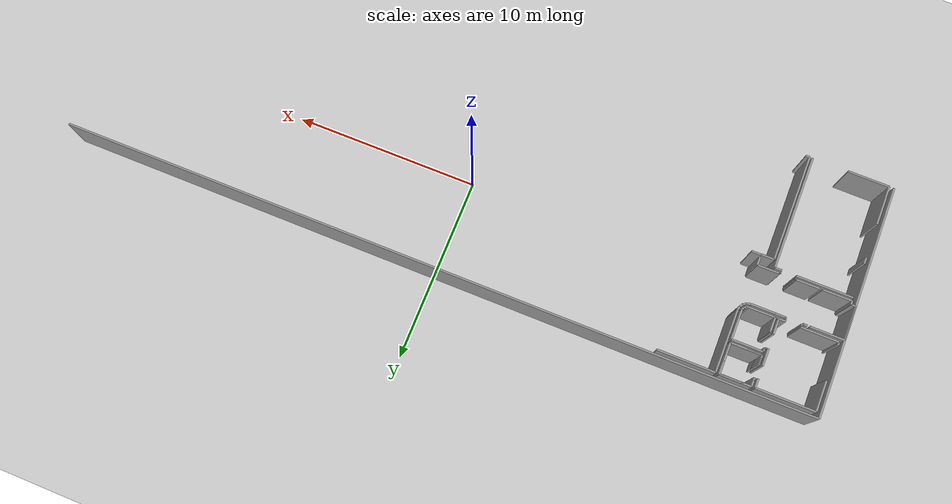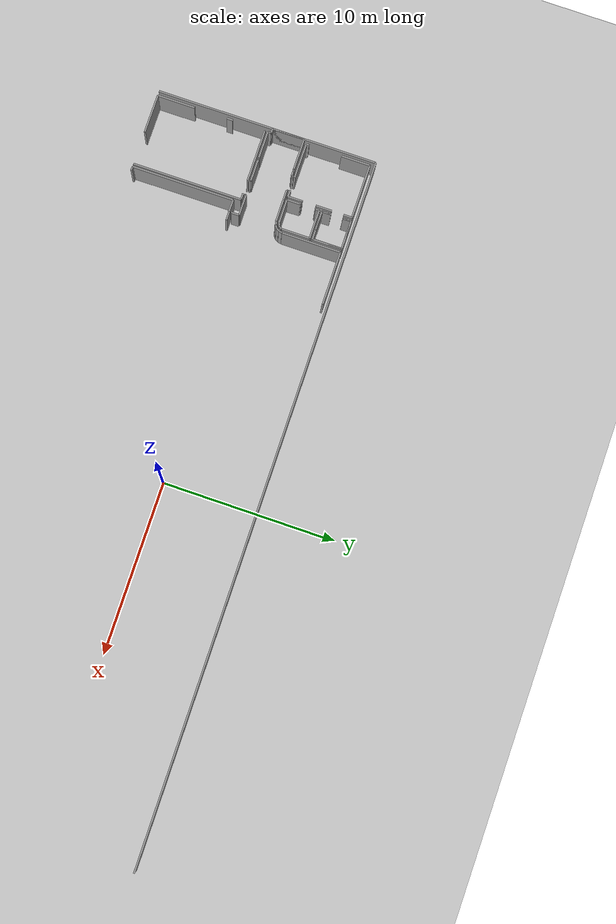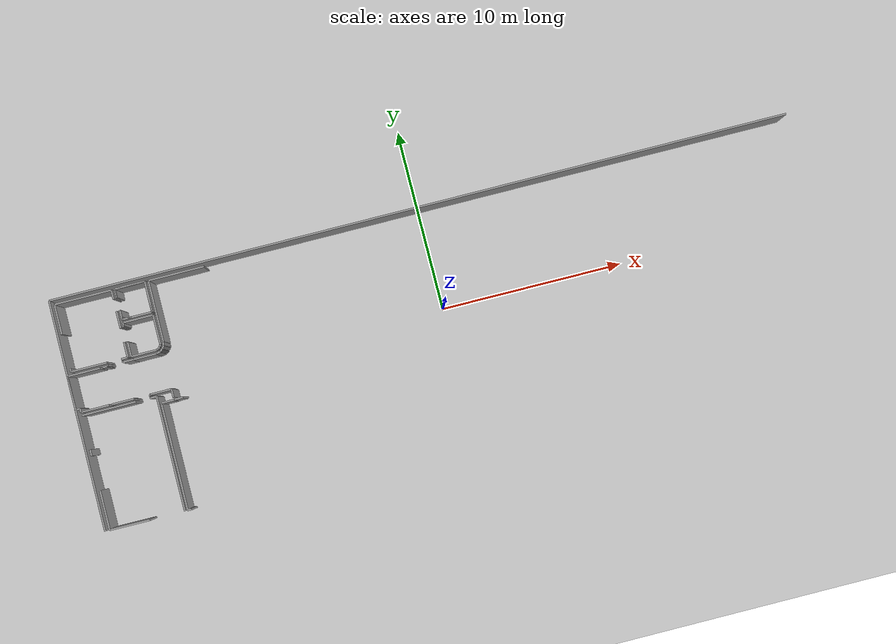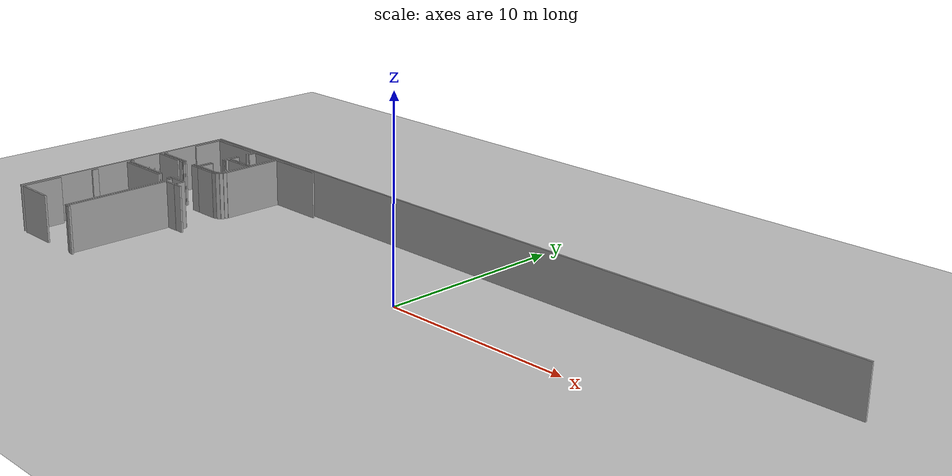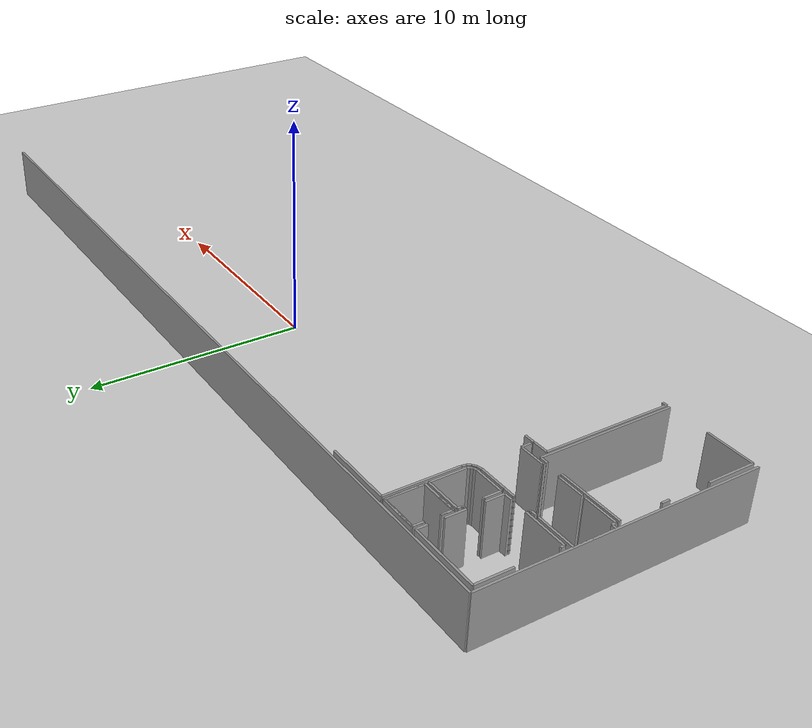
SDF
<sdf version="1.6">
 <world name="default">
  <model name="ground_plane">
   <static>1</static>
   <link name="link">
    <collision name="collision">
     <geometry><plane><normal>0 0 1</normal><size>100 100</size></plane></geometry>
     <surface><friction><ode><mu>100</mu><mu2>50</mu2></ode></friction></surface>
    </collision>
    <visual name="visual">
     <cast_shadows>0</cast_shadows>
     <geometry><plane><normal>0 0 1</normal><size>100 100</size></plane></geometry>
     <material>
      <script><uri>file://media/materials/scripts/gazebo.material</uri><name>Gazebo/Grey</name></script>
     </material>
    </visual>
   </link>
  </model>
  <model name="0510025537_Layout1_PLAN1">
   <static>1</static>
   <link name="Wall_0">
    <collision name="Wall_0_Collision">
     <geometry><box><size>1.64923428862 0.1 2.5</size></box></geometry>
     <pose>0.82461714431 0 1.25 0 0 0</pose>
    </collision>
    <visual name="Wall_0_Visual">
     <pose>0.82461714431 0 1.25 0 0 0</pose>
     <geometry><box><size>1.64923428862 0.1 2.5</size></box></geometry>
     <material>
      <script><uri>file://media/materials/scripts/gazebo.material</uri><name>Gazebo/Grey</name></script>
      <ambient>1 1 1 1</ambient>
     </material>
    </visual>
    <pose>3.54533900998 -0.258549914215 0 0 0 0.0</pose>
   </link>
   <link name="Wall_1">
    <collision name="Wall_1_Collision">
     <geometry><box><size>1.68164199021 0.1 2.5</size></box></geometry>
     <pose>0.840820995107 0 1.25 0 0 0</pose>
    </collision>
    <visual name="Wall_1_Visual">
     <pose>0.840820995107 0 1.25 0 0 0</pose>
     <geometry><box><size>1.68164199021 0.1 2.5</size></box></geometry>
     <material>
      <script><uri>file://media/materials/scripts/gazebo.material</uri><name>Gazebo/Grey</name></script>
      <ambient>1 1 1 1</ambient>
     </material>
    </visual>
    <pose>5.1945732986 -0.258549914215 0 0 0 -1.57079632679</pose>
   </link>
   <link name="Wall_2">
    <collision name="Wall_2_Collision">
     <geometry><box><size>1.65457202771 0.1 2.5</size></box></geometry>
     <pose>0.827286013853 0 1.25 0 0 0</pose>
    </collision>
    <visual name="Wall_2_Visual">
     <pose>0.827286013853 0 1.25 0 0 0</pose>
     <geometry><box><size>1.65457202771 0.1 2.5</size></box></geometry>
     <material>
      <script><uri>file://media/materials/scripts/gazebo.material</uri><name>Gazebo/Grey</name></script>
      <ambient>1 1 1 1</ambient>
     </material>
    </visual>
    <pose>5.1945732986 -1.94019190443 0 0 0 3.14159265359</pose>
   </link>
   <link name="Wall_3">
    <collision name="Wall_3_Collision">
     <geometry><box><size>0.517735273559 0.1 2.5</size></box></geometry>
     <pose>0.25886763678 0 1.25 0 0 0</pose>
    </collision>
    <visual name="Wall_3_Visual">
     <pose>0.25886763678 0 1.25 0 0 0</pose>
     <geometry><box><size>0.517735273559 0.1 2.5</size></box></geometry>
     <material>
      <script><uri>file://media/materials/scripts/gazebo.material</uri><name>Gazebo/Grey</name></script>
      <ambient>1 1 1 1</ambient>
     </material>
    </visual>
    <pose>3.54000127089 -1.94019190443 0 0 0 1.57079632679</pose>
   </link>
   <link name="Wall_4">
    <collision name="Wall_4_Collision">
     <geometry><box><size>0.475292094639 0.1 2.5</size></box></geometry>
     <pose>0.237646047319 0 1.25 0 0 0</pose>
    </collision>
    <visual name="Wall_4_Visual">
     <pose>0.237646047319 0 1.25 0 0 0</pose>
     <geometry><box><size>0.475292094639 0.1 2.5</size></box></geometry>
     <material>
      <script><uri>file://media/materials/scripts/gazebo.material</uri><name>Gazebo/Grey</name></script>
      <ambient>1 1 1 1</ambient>
     </material>
    </visual>
    <pose>3.54000127089 -0.733812035331 0 0 0 1.55956565127</pose>
   </link>
   <link name="Wall_5">
    <collision name="Wall_5_Collision">
     <geometry><box><size>0.523841901252 0.1 2.5</size></box></geometry>
     <pose>0.261920950626 0 1.25 0 0 0</pose>
    </collision>
    <visual name="Wall_5_Visual">
     <pose>0.261920950626 0 1.25 0 0 0</pose>
     <geometry><box><size>0.523841901252 0.1 2.5</size></box></geometry>
     <material>
      <script><uri>file://media/materials/scripts/gazebo.material</uri><name>Gazebo/Grey</name></script>
      <ambient>1 1 1 1</ambient>
     </material>
    </visual>
    <pose>3.54000127089 -1.94221261994 0 0 0 1.57079632679</pose>
   </link>
   <link name="Wall_6">
    <collision name="Wall_6_Collision">
     <geometry><box><size>0.4837834403 0.1 2.5</size></box></geometry>
     <pose>0.24189172015 0 1.25 0 0 0</pose>
    </collision>
    <visual name="Wall_6_Visual">
     <pose>0.24189172015 0 1.25 0 0 0</pose>
     <geometry><box><size>0.4837834403 0.1 2.5</size></box></geometry>
     <material>
      <script><uri>file://media/materials/scripts/gazebo.material</uri><name>Gazebo/Grey</name></script>
      <ambient>1 1 1 1</ambient>
     </material>
    </visual>
    <pose>3.54000127089 -0.739194255576 0 0 0 1.57079632679</pose>
   </link>
   <link name="Wall_7">
    <collision name="Wall_7_Collision">
     <geometry><box><size>1.66404016013 0.1 2.5</size></box></geometry>
     <pose>0.832020080066 0 1.25 0 0 0</pose>
    </collision>
    <visual name="Wall_7_Visual">
     <pose>0.832020080066 0 1.25 0 0 0</pose>
     <geometry><box><size>1.66404016013 0.1 2.5</size></box></geometry>
     <material>
      <script><uri>file://media/materials/scripts/gazebo.material</uri><name>Gazebo/Grey</name></script>
      <ambient>1 1 1 1</ambient>
     </material>
    </visual>
    <pose>3.54000127089 -0.255410815276 0 0 0 0.0</pose>
   </link>
   <link name="Wall_8">
    <collision name="Wall_8_Collision">
     <geometry><box><size>1.68915295164 0.1 2.5</size></box></geometry>
     <pose>0.844576475821 0 1.25 0 0 0</pose>
    </collision>
    <visual name="Wall_8_Visual">
     <pose>0.844576475821 0 1.25 0 0 0</pose>
     <geometry><box><size>1.68915295164 0.1 2.5</size></box></geometry>
     <material>
      <script><uri>file://media/materials/scripts/gazebo.material</uri><name>Gazebo/Grey</name></script>
      <ambient>1 1 1 1</ambient>
     </material>
    </visual>
    <pose>5.20404143102 -0.255410815276 0 0 0 -1.57079632679</pose>
   </link>
   <link name="Wall_9">
    <collision name="Wall_9_Collision">
     <geometry><box><size>1.66588295101 0.1 2.5</size></box></geometry>
     <pose>0.832941475504 0 1.25 0 0 0</pose>
    </collision>
    <visual name="Wall_9_Visual">
     <pose>0.832941475504 0 1.25 0 0 0</pose>
     <geometry><box><size>1.66588295101 0.1 2.5</size></box></geometry>
     <material>
      <script><uri>file://media/materials/scripts/gazebo.material</uri><name>Gazebo/Grey</name></script>
      <ambient>1 1 1 1</ambient>
     </material>
    </visual>
    <pose>5.20404143102 -1.94456376692 0 0 0 3.14159265359</pose>
   </link>
   <link name="Wall_10">
    <collision name="Wall_10_Collision">
     <geometry><box><size>0.528391688378 0.1 2.5</size></box></geometry>
     <pose>0.264195844189 0 1.25 0 0 0</pose>
    </collision>
    <visual name="Wall_10_Visual">
     <pose>0.264195844189 0 1.25 0 0 0</pose>
     <geometry><box><size>0.528391688378 0.1 2.5</size></box></geometry>
     <material>
      <script><uri>file://media/materials/scripts/gazebo.material</uri><name>Gazebo/Grey</name></script>
      <ambient>1 1 1 1</ambient>
     </material>
    </visual>
    <pose>3.53815848002 -1.94456376692 0 0 0 1.57079632679</pose>
   </link>
   <link name="Wall_11">
    <collision name="Wall_11_Collision">
     <geometry><box><size>0.476745950657 0.1 2.5</size></box></geometry>
     <pose>0.238372975328 0 1.25 0 0 0</pose>
    </collision>
    <visual name="Wall_11_Visual">
     <pose>0.238372975328 0 1.25 0 0 0</pose>
     <geometry><box><size>0.476745950657 0.1 2.5</size></box></geometry>
     <material>
      <script><uri>file://media/materials/scripts/gazebo.material</uri><name>Gazebo/Grey</name></script>
      <ambient>1 1 1 1</ambient>
     </material>
    </visual>
    <pose>3.53815848002 -0.735241786872 0 0 0 1.5557342136</pose>
   </link>
   <link name="Wall_12">
    <collision name="Wall_12_Collision">
     <geometry><box><size>0.788523860965 0.1 2.5</size></box></geometry>
     <pose>0.394261930482 0 1.25 0 0 0</pose>
    </collision>
    <visual name="Wall_12_Visual">
     <pose>0.394261930482 0 1.25 0 0 0</pose>
     <geometry><box><size>0.788523860965 0.1 2.5</size></box></geometry>
     <material>
      <script><uri>file://media/materials/scripts/gazebo.material</uri><name>Gazebo/Grey</name></script>
      <ambient>1 1 1 1</ambient>
     </material>
    </visual>
    <pose>3.54178051725 -3.9739340408 0 0 0 1.57079632679</pose>
   </link>
   <link name="Wall_13">
    <collision name="Wall_13_Collision">
     <geometry><box><size>0.0599224756942 0.1 2.5</size></box></geometry>
     <pose>0.0299612378471 0 1.25 0 0 0</pose>
    </collision>
    <visual name="Wall_13_Visual">
     <pose>0.0299612378471 0 1.25 0 0 0</pose>
     <geometry><box><size>0.0599224756942 0.1 2.5</size></box></geometry>
     <material>
      <script><uri>file://media/materials/scripts/gazebo.material</uri><name>Gazebo/Grey</name></script>
      <ambient>1 1 1 1</ambient>
     </material>
    </visual>
    <pose>3.54178051725 -3.18541017983 0 0 0 3.14159265359</pose>
   </link>
   <link name="Wall_14">
    <collision name="Wall_14_Collision">
     <geometry><box><size>0.0581432293321 0.1 2.5</size></box></geometry>
     <pose>0.0290716146661 0 1.25 0 0 0</pose>
    </collision>
    <visual name="Wall_14_Visual">
     <pose>0.0290716146661 0 1.25 0 0 0</pose>
     <geometry><box><size>0.0581432293321 0.1 2.5</size></box></geometry>
     <material>
      <script><uri>file://media/materials/scripts/gazebo.material</uri><name>Gazebo/Grey</name></script>
      <ambient>1 1 1 1</ambient>
     </material>
    </visual>
    <pose>3.48185804156 -3.18541017983 0 0 0 1.57079632679</pose>
   </link>
   <link name="Wall_15">
    <collision name="Wall_15_Collision">
     <geometry><box><size>0.0581114570757 0.1 2.5</size></box></geometry>
     <pose>0.0290557285378 0 1.25 0 0 0</pose>
    </collision>
    <visual name="Wall_15_Visual">
     <pose>0.0290557285378 0 1.25 0 0 0</pose>
     <geometry><box><size>0.0581114570757 0.1 2.5</size></box></geometry>
     <material>
      <script><uri>file://media/materials/scripts/gazebo.material</uri><name>Gazebo/Grey</name></script>
      <ambient>1 1 1 1</ambient>
     </material>
    </visual>
    <pose>3.48185804156 -2.36017665375 0 0 0 1.57079632679</pose>
   </link>
   <link name="Wall_16">
    <collision name="Wall_16_Collision">
     <geometry><box><size>0.0618923555951 0.1 2.5</size></box></geometry>
     <pose>0.0309461777975 0 1.25 0 0 0</pose>
    </collision>
    <visual name="Wall_16_Visual">
     <pose>0.0309461777975 0 1.25 0 0 0</pose>
     <geometry><box><size>0.0618923555951 0.1 2.5</size></box></geometry>
     <material>
      <script><uri>file://media/materials/scripts/gazebo.material</uri><name>Gazebo/Grey</name></script>
      <ambient>1 1 1 1</ambient>
     </material>
    </visual>
    <pose>3.48185804156 -2.30206519667 0 0 0 0.0</pose>
   </link>
   <link name="Wall_17">
    <collision name="Wall_17_Collision">
     <geometry><box><size>0.193200737116 0.1 2.5</size></box></geometry>
     <pose>0.0966003685582 0 1.25 0 0 0</pose>
    </collision>
    <visual name="Wall_17_Visual">
     <pose>0.0966003685582 0 1.25 0 0 0</pose>
     <geometry><box><size>0.193200737116 0.1 2.5</size></box></geometry>
     <material>
      <script><uri>file://media/materials/scripts/gazebo.material</uri><name>Gazebo/Grey</name></script>
      <ambient>1 1 1 1</ambient>
     </material>
    </visual>
    <pose>3.54375039715 -2.30206519667 0 0 0 1.57079632679</pose>
   </link>
   <link name="Wall_18">
    <collision name="Wall_18_Collision">
     <geometry><box><size>1.65984622228 0.1 2.5</size></box></geometry>
     <pose>0.829923111139 0 1.25 0 0 0</pose>
    </collision>
    <visual name="Wall_18_Visual">
     <pose>0.829923111139 0 1.25 0 0 0</pose>
     <geometry><box><size>1.65984622228 0.1 2.5</size></box></geometry>
     <material>
      <script><uri>file://media/materials/scripts/gazebo.material</uri><name>Gazebo/Grey</name></script>
      <ambient>1 1 1 1</ambient>
     </material>
    </visual>
    <pose>3.54375039715 -2.10886445955 0 0 0 0.0</pose>
   </link>
   <link name="Wall_19">
    <collision name="Wall_19_Collision">
     <geometry><box><size>1.62398169918 0.1 2.5</size></box></geometry>
     <pose>0.81199084959 0 1.25 0 0 0</pose>
    </collision>
    <visual name="Wall_19_Visual">
     <pose>0.81199084959 0 1.25 0 0 0</pose>
     <geometry><box><size>1.62398169918 0.1 2.5</size></box></geometry>
     <material>
      <script><uri>file://media/materials/scripts/gazebo.material</uri><name>Gazebo/Grey</name></script>
      <ambient>1 1 1 1</ambient>
     </material>
    </visual>
    <pose>5.20359661943 -2.10886445955 0 0 0 -1.57079632679</pose>
   </link>
   <link name="Wall_20">
    <collision name="Wall_20_Collision">
     <geometry><box><size>0.123572431417 0.1 2.5</size></box></geometry>
     <pose>0.0617862157083 0 1.25 0 0 0</pose>
    </collision>
    <visual name="Wall_20_Visual">
     <pose>0.0617862157083 0 1.25 0 0 0</pose>
     <geometry><box><size>0.123572431417 0.1 2.5</size></box></geometry>
     <material>
      <script><uri>file://media/materials/scripts/gazebo.material</uri><name>Gazebo/Grey</name></script>
      <ambient>1 1 1 1</ambient>
     </material>
    </visual>
    <pose>5.20359661943 -3.73284615873 0 0 0 -2.09657584292</pose>
   </link>
   <link name="Wall_21">
    <collision name="Wall_21_Collision">
     <geometry><box><size>0.124756927835 0.1 2.5</size></box></geometry>
     <pose>0.0623784639175 0 1.25 0 0 0</pose>
    </collision>
    <visual name="Wall_21_Visual">
     <pose>0.0623784639175 0 1.25 0 0 0</pose>
     <geometry><box><size>0.124756927835 0.1 2.5</size></box></geometry>
     <material>
      <script><uri>file://media/materials/scripts/gazebo.material</uri><name>Gazebo/Grey</name></script>
      <ambient>1 1 1 1</ambient>
     </material>
    </visual>
    <pose>5.14157717481 -3.83972802948 0 0 0 -2.37564448673</pose>
   </link>
   <link name="Wall_22">
    <collision name="Wall_22_Collision">
     <geometry><box><size>0.126291773989 0.1 2.5</size></box></geometry>
     <pose>0.0631458869943 0 1.25 0 0 0</pose>
    </collision>
    <visual name="Wall_22_Visual">
     <pose>0.0631458869943 0 1.25 0 0 0</pose>
     <geometry><box><size>0.126291773989 0.1 2.5</size></box></geometry>
     <material>
      <script><uri>file://media/materials/scripts/gazebo.material</uri><name>Gazebo/Grey</name></script>
      <ambient>1 1 1 1</ambient>
     </material>
    </visual>
    <pose>5.05166168901 -3.92621211158 0 0 0 -2.77304608745</pose>
   </link>
   <link name="Wall_23">
    <collision name="Wall_23_Collision">
     <geometry><box><size>1.39207142143 0.1 2.5</size></box></geometry>
     <pose>0.696035710716 0 1.25 0 0 0</pose>
    </collision>
    <visual name="Wall_23_Visual">
     <pose>0.696035710716 0 1.25 0 0 0</pose>
     <geometry><box><size>1.39207142143 0.1 2.5</size></box></geometry>
     <material>
      <script><uri>file://media/materials/scripts/gazebo.material</uri><name>Gazebo/Grey</name></script>
      <ambient>1 1 1 1</ambient>
     </material>
    </visual>
    <pose>4.93385016204 -3.97170998284 0 0 0 -3.1399949921</pose>
   </link>
   <link name="Wall_24">
    <collision name="Wall_24_Collision">
     <geometry><box><size>0.175255766665 0.1 2.5</size></box></geometry>
     <pose>0.0876278833323 0 1.25 0 0 0</pose>
    </collision>
    <visual name="Wall_24_Visual">
     <pose>0.0876278833323 0 1.25 0 0 0</pose>
     <geometry><box><size>0.175255766665 0.1 2.5</size></box></geometry>
     <material>
      <script><uri>file://media/materials/scripts/gazebo.material</uri><name>Gazebo/Grey</name></script>
      <ambient>1 1 1 1</ambient>
     </material>
    </visual>
    <pose>0.234415708204 -3.96713477791 0 0 0 1.57079632679</pose>
   </link>
   <link name="Wall_25">
    <collision name="Wall_25_Collision">
     <geometry><box><size>1.64880218593 0.1 2.5</size></box></geometry>
     <pose>0.824401092966 0 1.25 0 0 0</pose>
    </collision>
    <visual name="Wall_25_Visual">
     <pose>0.824401092966 0 1.25 0 0 0</pose>
     <geometry><box><size>1.64880218593 0.1 2.5</size></box></geometry>
     <material>
      <script><uri>file://media/materials/scripts/gazebo.material</uri><name>Gazebo/Grey</name></script>
      <ambient>1 1 1 1</ambient>
     </material>
    </visual>
    <pose>0.234415708204 -1.91654063672 0 0 0 1.57079632679</pose>
   </link>
   <link name="Wall_26">
    <collision name="Wall_26_Collision">
     <geometry><box><size>3.12130647519 0.1 2.5</size></box></geometry>
     <pose>1.56065323759 0 1.25 0 0 0</pose>
    </collision>
    <visual name="Wall_26_Visual">
     <pose>1.56065323759 0 1.25 0 0 0</pose>
     <geometry><box><size>3.12130647519 0.1 2.5</size></box></geometry>
     <material>
      <script><uri>file://media/materials/scripts/gazebo.material</uri><name>Gazebo/Grey</name></script>
      <ambient>1 1 1 1</ambient>
     </material>
    </visual>
    <pose>0.234415708204 -0.267738450785 0 0 0 0.0</pose>
   </link>
   <link name="Wall_27">
    <collision name="Wall_27_Collision">
     <geometry><box><size>0.48933723073 0.1 2.5</size></box></geometry>
     <pose>0.244668615365 0 1.25 0 0 0</pose>
    </collision>
    <visual name="Wall_27_Visual">
     <pose>0.244668615365 0 1.25 0 0 0</pose>
     <geometry><box><size>0.48933723073 0.1 2.5</size></box></geometry>
     <material>
      <script><uri>file://media/materials/scripts/gazebo.material</uri><name>Gazebo/Grey</name></script>
      <ambient>1 1 1 1</ambient>
     </material>
    </visual>
    <pose>3.35572218339 -0.267738450785 0 0 0 -1.57079632679</pose>
   </link>
   <link name="Wall_28">
    <collision name="Wall_28_Collision">
     <geometry><box><size>0.924286712842 0.1 2.5</size></box></geometry>
     <pose>0.462143356421 0 1.25 0 0 0</pose>
    </collision>
    <visual name="Wall_28_Visual">
     <pose>0.462143356421 0 1.25 0 0 0</pose>
     <geometry><box><size>0.924286712842 0.1 2.5</size></box></geometry>
     <material>
      <script><uri>file://media/materials/scripts/gazebo.material</uri><name>Gazebo/Grey</name></script>
      <ambient>1 1 1 1</ambient>
     </material>
    </visual>
    <pose>3.35572218339 -1.4363474614 0 0 0 -1.57079632679</pose>
   </link>
   <link name="Wall_29">
    <collision name="Wall_29_Collision">
     <geometry><box><size>0.844252398805 0.1 2.5</size></box></geometry>
     <pose>0.422126199403 0 1.25 0 0 0</pose>
    </collision>
    <visual name="Wall_29_Visual">
     <pose>0.422126199403 0 1.25 0 0 0</pose>
     <geometry><box><size>0.844252398805 0.1 2.5</size></box></geometry>
     <material>
      <script><uri>file://media/materials/scripts/gazebo.material</uri><name>Gazebo/Grey</name></script>
      <ambient>1 1 1 1</ambient>
     </material>
    </visual>
    <pose>3.35572218339 -3.13222342251 0 0 0 -1.57079632679</pose>
   </link>
   <link name="Wall_30">
    <collision name="Wall_30_Collision">
     <geometry><box><size>0.364872593252 0.1 2.5</size></box></geometry>
     <pose>0.182436296626 0 1.25 0 0 0</pose>
    </collision>
    <visual name="Wall_30_Visual">
     <pose>0.182436296626 0 1.25 0 0 0</pose>
     <geometry><box><size>0.364872593252 0.1 2.5</size></box></geometry>
     <material>
      <script><uri>file://media/materials/scripts/gazebo.material</uri><name>Gazebo/Grey</name></script>
      <ambient>1 1 1 1</ambient>
     </material>
    </visual>
    <pose>3.35572218339 -3.97647582131 0 0 0 3.14159265359</pose>
   </link>
   <link name="Wall_31">
    <collision name="Wall_31_Collision">
     <geometry><box><size>1.98655052484 0.1 2.5</size></box></geometry>
     <pose>0.993275262419 0 1.25 0 0 0</pose>
    </collision>
    <visual name="Wall_31_Visual">
     <pose>0.993275262419 0 1.25 0 0 0</pose>
     <geometry><box><size>1.98655052484 0.1 2.5</size></box></geometry>
     <material>
      <script><uri>file://media/materials/scripts/gazebo.material</uri><name>Gazebo/Grey</name></script>
      <ambient>1 1 1 1</ambient>
     </material>
    </visual>
    <pose>2.22094427146 -3.97647582131 0 0 0 3.13689049389</pose>
   </link>
   <link name="Wall_32">
    <collision name="Wall_32_Collision">
     <geometry><box><size>1.83713541336 0.1 2.5</size></box></geometry>
     <pose>0.918567706679 0 1.25 0 0 0</pose>
    </collision>
    <visual name="Wall_32_Visual">
     <pose>0.918567706679 0 1.25 0 0 0</pose>
     <geometry><box><size>1.83713541336 0.1 2.5</size></box></geometry>
     <material>
      <script><uri>file://media/materials/scripts/gazebo.material</uri><name>Gazebo/Grey</name></script>
      <ambient>1 1 1 1</ambient>
     </material>
    </visual>
    <pose>0.0 -6.00157590392 0 0 0 1.57079632679</pose>
   </link>
   <link name="Wall_33">
    <collision name="Wall_33_Collision">
     <geometry><box><size>1.78928639512 0.1 2.5</size></box></geometry>
     <pose>0.89464319756 0 1.25 0 0 0</pose>
    </collision>
    <visual name="Wall_33_Visual">
     <pose>0.89464319756 0 1.25 0 0 0</pose>
     <geometry><box><size>1.78928639512 0.1 2.5</size></box></geometry>
     <material>
      <script><uri>file://media/materials/scripts/gazebo.material</uri><name>Gazebo/Grey</name></script>
      <ambient>1 1 1 1</ambient>
     </material>
    </visual>
    <pose>0.0 -4.16444049056 0 0 0 0.0</pose>
   </link>
   <link name="Wall_34">
    <collision name="Wall_34_Collision">
     <geometry><box><size>1.54616508864 0.1 2.5</size></box></geometry>
     <pose>0.773082544322 0 1.25 0 0 0</pose>
    </collision>
    <visual name="Wall_34_Visual">
     <pose>0.773082544322 0 1.25 0 0 0</pose>
     <geometry><box><size>1.54616508864 0.1 2.5</size></box></geometry>
     <material>
      <script><uri>file://media/materials/scripts/gazebo.material</uri><name>Gazebo/Grey</name></script>
      <ambient>1 1 1 1</ambient>
     </material>
    </visual>
    <pose>1.78928639512 -6.19818262693 0 0 0 3.14159265359</pose>
   </link>
   <link name="Wall_35">
    <collision name="Wall_35_Collision">
     <geometry><box><size>0.193556586389 0.1 2.5</size></box></geometry>
     <pose>0.0967782931944 0 1.25 0 0 0</pose>
    </collision>
    <visual name="Wall_35_Visual">
     <pose>0.0967782931944 0 1.25 0 0 0</pose>
     <geometry><box><size>0.193556586389 0.1 2.5</size></box></geometry>
     <material>
      <script><uri>file://media/materials/scripts/gazebo.material</uri><name>Gazebo/Grey</name></script>
      <ambient>1 1 1 1</ambient>
     </material>
    </visual>
    <pose>0.243121306475 -6.19818262693 0 0 0 1.57079632679</pose>
   </link>
   <link name="Wall_36">
    <collision name="Wall_36_Collision">
     <geometry><box><size>0.243140438832 0.1 2.5</size></box></geometry>
     <pose>0.121570219416 0 1.25 0 0 0</pose>
    </collision>
    <visual name="Wall_36_Visual">
     <pose>0.121570219416 0 1.25 0 0 0</pose>
     <geometry><box><size>0.243140438832 0.1 2.5</size></box></geometry>
     <material>
      <script><uri>file://media/materials/scripts/gazebo.material</uri><name>Gazebo/Grey</name></script>
      <ambient>1 1 1 1</ambient>
     </material>
    </visual>
    <pose>0.243121306475 -6.00462604054 0 0 0 3.12904757207</pose>
   </link>
   <link name="Wall_37">
    <collision name="Wall_37_Collision">
     <geometry><box><size>2.1547944335 0.1 2.5</size></box></geometry>
     <pose>1.07739721675 0 1.25 0 0 0</pose>
    </collision>
    <visual name="Wall_37_Visual">
     <pose>1.07739721675 0 1.25 0 0 0</pose>
     <geometry><box><size>2.1547944335 0.1 2.5</size></box></geometry>
     <material>
      <script><uri>file://media/materials/scripts/gazebo.material</uri><name>Gazebo/Grey</name></script>
      <ambient>1 1 1 1</ambient>
     </material>
    </visual>
    <pose>0.248395501048 -12.6232954184 0 0 0 1.57079632679</pose>
   </link>
   <link name="Wall_38">
    <collision name="Wall_38_Collision">
     <geometry><box><size>0.353879392514 0.1 2.5</size></box></geometry>
     <pose>0.176939696257 0 1.25 0 0 0</pose>
    </collision>
    <visual name="Wall_38_Visual">
     <pose>0.176939696257 0 1.25 0 0 0</pose>
     <geometry><box><size>0.353879392514 0.1 2.5</size></box></geometry>
     <material>
      <script><uri>file://media/materials/scripts/gazebo.material</uri><name>Gazebo/Grey</name></script>
      <ambient>1 1 1 1</ambient>
     </material>
    </visual>
    <pose>0.248395501048 -8.59171379551 0 0 0 1.57079632679</pose>
   </link>
   <link name="Wall_39">
    <collision name="Wall_39_Collision">
     <geometry><box><size>2.97032471246 0.1 2.5</size></box></geometry>
     <pose>1.48516235623 0 1.25 0 0 0</pose>
    </collision>
    <visual name="Wall_39_Visual">
     <pose>1.48516235623 0 1.25 0 0 0</pose>
     <geometry><box><size>2.97032471246 0.1 2.5</size></box></geometry>
     <material>
      <script><uri>file://media/materials/scripts/gazebo.material</uri><name>Gazebo/Grey</name></script>
      <ambient>1 1 1 1</ambient>
     </material>
    </visual>
    <pose>0.248395501048 -6.37388320519 0 0 0 0.0</pose>
   </link>
   <link name="Wall_40">
    <collision name="Wall_40_Collision">
     <geometry><box><size>0.368176907924 0.1 2.5</size></box></geometry>
     <pose>0.184088453962 0 1.25 0 0 0</pose>
    </collision>
    <visual name="Wall_40_Visual">
     <pose>0.184088453962 0 1.25 0 0 0</pose>
     <geometry><box><size>0.368176907924 0.1 2.5</size></box></geometry>
     <material>
      <script><uri>file://media/materials/scripts/gazebo.material</uri><name>Gazebo/Grey</name></script>
      <ambient>1 1 1 1</ambient>
     </material>
    </visual>
    <pose>3.98481286141 -6.37388320519 0 0 0 0.0</pose>
   </link>
   <link name="Wall_41">
    <collision name="Wall_41_Collision">
     <geometry><box><size>6.26129503717 0.1 2.5</size></box></geometry>
     <pose>3.13064751859 0 1.25 0 0 0</pose>
    </collision>
    <visual name="Wall_41_Visual">
     <pose>3.13064751859 0 1.25 0 0 0</pose>
     <geometry><box><size>6.26129503717 0.1 2.5</size></box></geometry>
     <material>
      <script><uri>file://media/materials/scripts/gazebo.material</uri><name>Gazebo/Grey</name></script>
      <ambient>1 1 1 1</ambient>
     </material>
    </visual>
    <pose>4.35298976933 -6.37388320519 0 0 0 -1.57079632679</pose>
   </link>
   <link name="Wall_42">
    <collision name="Wall_42_Collision">
     <geometry><box><size>2.19898997621 0.1 2.5</size></box></geometry>
     <pose>1.09949498811 0 1.25 0 0 0</pose>
    </collision>
    <visual name="Wall_42_Visual">
     <pose>1.09949498811 0 1.25 0 0 0</pose>
     <geometry><box><size>2.19898997621 0.1 2.5</size></box></geometry>
     <material>
      <script><uri>file://media/materials/scripts/gazebo.material</uri><name>Gazebo/Grey</name></script>
      <ambient>1 1 1 1</ambient>
     </material>
    </visual>
    <pose>2.44735337104 -12.6351782424 0 0 0 3.13618886281</pose>
   </link>
   <link name="Wall_43">
    <collision name="Wall_43_Collision">
     <geometry><box><size>5.84736607994 0.1 2.5</size></box></geometry>
     <pose>2.92368303997 0 1.25 0 0 0</pose>
    </collision>
    <visual name="Wall_43_Visual">
     <pose>2.92368303997 0 1.25 0 0 0</pose>
     <geometry><box><size>5.84736607994 0.1 2.5</size></box></geometry>
     <material>
      <script><uri>file://media/materials/scripts/gazebo.material</uri><name>Gazebo/Grey</name></script>
      <ambient>1 1 1 1</ambient>
     </material>
    </visual>
    <pose>4.50854673699 -12.6251382093 0 0 0 1.57079632679</pose>
   </link>
   <link name="Wall_44">
    <collision name="Wall_44_Collision">
     <geometry><box><size>0.694859248904 0.1 2.5</size></box></geometry>
     <pose>0.347429624452 0 1.25 0 0 0</pose>
    </collision>
    <visual name="Wall_44_Visual">
     <pose>0.347429624452 0 1.25 0 0 0</pose>
     <geometry><box><size>0.694859248904 0.1 2.5</size></box></geometry>
     <material>
      <script><uri>file://media/materials/scripts/gazebo.material</uri><name>Gazebo/Grey</name></script>
      <ambient>1 1 1 1</ambient>
     </material>
    </visual>
    <pose>4.50854673699 -6.77777212938 0 0 0 0.0</pose>
   </link>
   <link name="Wall_45">
    <collision name="Wall_45_Collision">
     <geometry><box><size>0.0155684056682 0.1 2.5</size></box></geometry>
     <pose>0.00778420283409 0 1.25 0 0 0</pose>
    </collision>
    <visual name="Wall_45_Visual">
     <pose>0.00778420283409 0 1.25 0 0 0</pose>
     <geometry><box><size>0.0155684056682 0.1 2.5</size></box></geometry>
     <material>
      <script><uri>file://media/materials/scripts/gazebo.material</uri><name>Gazebo/Grey</name></script>
      <ambient>1 1 1 1</ambient>
     </material>
    </visual>
    <pose>5.20340598589 -6.77777212938 0 0 0 1.57079632679</pose>
   </link>
   <link name="Wall_46">
    <collision name="Wall_46_Collision">
     <geometry><box><size>0.495710745377 0.1 2.5</size></box></geometry>
     <pose>0.247855372689 0 1.25 0 0 0</pose>
    </collision>
    <visual name="Wall_46_Visual">
     <pose>0.247855372689 0 1.25 0 0 0</pose>
     <geometry><box><size>0.495710745377 0.1 2.5</size></box></geometry>
     <material>
      <script><uri>file://media/materials/scripts/gazebo.material</uri><name>Gazebo/Grey</name></script>
      <ambient>1 1 1 1</ambient>
     </material>
    </visual>
    <pose>5.20340598589 -6.76220372371 0 0 0 0.0</pose>
   </link>
   <link name="Wall_57">
    <collision name="Wall_57_Collision">
     <geometry><box><size>0.213527812805 0.1 2.5</size></box></geometry>
     <pose>0.106763906402 0 1.25 0 0 0</pose>
    </collision>
    <visual name="Wall_57_Visual">
     <pose>0.106763906402 0 1.25 0 0 0</pose>
     <geometry><box><size>0.213527812805 0.1 2.5</size></box></geometry>
     <material>
      <script><uri>file://media/materials/scripts/gazebo.material</uri><name>Gazebo/Grey</name></script>
      <ambient>1 1 1 1</ambient>
     </material>
    </visual>
    <pose>4.72199275593 -12.631047849 0 0 0 3.11391291332</pose>
   </link>
   <link name="Wall_63">
    <collision name="Wall_63_Collision">
     <geometry><box><size>1.26726822139 0.1 2.5</size></box></geometry>
     <pose>0.633634110695 0 1.25 0 0 0</pose>
    </collision>
    <visual name="Wall_63_Visual">
     <pose>0.633634110695 0 1.25 0 0 0</pose>
     <geometry><box><size>1.26726822139 0.1 2.5</size></box></geometry>
     <material>
      <script><uri>file://media/materials/scripts/gazebo.material</uri><name>Gazebo/Grey</name></script>
      <ambient>1 1 1 1</ambient>
     </material>
    </visual>
    <pose>3.61256910466 -4.15827667281 0 0 0 0.0</pose>
   </link>
   <link name="Wall_64">
    <collision name="Wall_64_Collision">
     <geometry><box><size>0.222871189466 0.1 2.5</size></box></geometry>
     <pose>0.111435594733 0 1.25 0 0 0</pose>
    </collision>
    <visual name="Wall_64_Visual">
     <pose>0.111435594733 0 1.25 0 0 0</pose>
     <geometry><box><size>0.222871189466 0.1 2.5</size></box></geometry>
     <material>
      <script><uri>file://media/materials/scripts/gazebo.material</uri><name>Gazebo/Grey</name></script>
      <ambient>1 1 1 1</ambient>
     </material>
    </visual>
    <pose>4.87983732605 -4.15827667281 0 0 0 0.24802132022</pose>
   </link>
   <link name="Wall_65">
    <collision name="Wall_65_Collision">
     <geometry><box><size>0.201920786478 0.1 2.5</size></box></geometry>
     <pose>0.100960393239 0 1.25 0 0 0</pose>
    </collision>
    <visual name="Wall_65_Visual">
     <pose>0.100960393239 0 1.25 0 0 0</pose>
     <geometry><box><size>0.201920786478 0.1 2.5</size></box></geometry>
     <material>
      <script><uri>file://media/materials/scripts/gazebo.material</uri><name>Gazebo/Grey</name></script>
      <ambient>1 1 1 1</ambient>
     </material>
    </visual>
    <pose>5.09588867001 -4.10356484718 0 0 0 0.639347054138</pose>
   </link>
   <link name="Wall_66">
    <collision name="Wall_66_Collision">
     <geometry><box><size>0.185253017718 0.1 2.5</size></box></geometry>
     <pose>0.0926265088592 0 1.25 0 0 0</pose>
    </collision>
    <visual name="Wall_66_Visual">
     <pose>0.0926265088592 0 1.25 0 0 0</pose>
     <geometry><box><size>0.185253017718 0.1 2.5</size></box></geometry>
     <material>
      <script><uri>file://media/materials/scripts/gazebo.material</uri><name>Gazebo/Grey</name></script>
      <ambient>1 1 1 1</ambient>
     </material>
    </visual>
    <pose>5.25792717799 -3.98308445066 0 0 0 1.04190708385</pose>
   </link>
   <link name="Wall_67">
    <collision name="Wall_67_Collision">
     <geometry><box><size>0.19106731906 0.1 2.5</size></box></geometry>
     <pose>0.0955336595299 0 1.25 0 0 0</pose>
    </collision>
    <visual name="Wall_67_Visual">
     <pose>0.0955336595299 0 1.25 0 0 0</pose>
     <geometry><box><size>0.19106731906 0.1 2.5</size></box></geometry>
     <material>
      <script><uri>file://media/materials/scripts/gazebo.material</uri><name>Gazebo/Grey</name></script>
      <ambient>1 1 1 1</ambient>
     </material>
    </visual>
    <pose>5.35140115651 -3.82314291161 0 0 0 1.36276911483</pose>
   </link>
   <link name="Wall_68">
    <collision name="Wall_68_Collision">
     <geometry><box><size>3.37777212938 0.1 2.5</size></box></geometry>
     <pose>1.68888606469 0 1.25 0 0 0</pose>
    </collision>
    <visual name="Wall_68_Visual">
     <pose>1.68888606469 0 1.25 0 0 0</pose>
     <geometry><box><size>3.37777212938 0.1 2.5</size></box></geometry>
     <material>
      <script><uri>file://media/materials/scripts/gazebo.material</uri><name>Gazebo/Grey</name></script>
      <ambient>1 1 1 1</ambient>
     </material>
    </visual>
    <pose>5.39086229904 -3.63619495457 0 0 0 1.57079632679</pose>
   </link>
   <link name="Wall_69">
    <collision name="Wall_69_Collision">
     <geometry><box><size>3.06398932452 0.1 2.5</size></box></geometry>
     <pose>1.53199466226 0 1.25 0 0 0</pose>
    </collision>
    <visual name="Wall_69_Visual">
     <pose>1.53199466226 0 1.25 0 0 0</pose>
     <geometry><box><size>3.06398932452 0.1 2.5</size></box></geometry>
     <material>
      <script><uri>file://media/materials/scripts/gazebo.material</uri><name>Gazebo/Grey</name></script>
      <ambient>1 1 1 1</ambient>
     </material>
    </visual>
    <pose>5.39086229904 -0.258422825189 0 0 0 0.0</pose>
   </link>
   <link name="Wall_78">
    <collision name="Wall_78_Collision">
     <geometry><box><size>0.45262756561 0.1 2.5</size></box></geometry>
     <pose>0.226313782805 0 1.25 0 0 0</pose>
    </collision>
    <visual name="Wall_78_Visual">
     <pose>0.226313782805 0 1.25 0 0 0</pose>
     <geometry><box><size>0.45262756561 0.1 2.5</size></box></geometry>
     <material>
      <script><uri>file://media/materials/scripts/gazebo.material</uri><name>Gazebo/Grey</name></script>
      <ambient>1 1 1 1</ambient>
     </material>
    </visual>
    <pose>5.20874372498 -6.64153269365 0 0 0 1.57079632679</pose>
   </link>
   <link name="Wall_79">
    <collision name="Wall_79_Collision">
     <geometry><box><size>1.17169727394 0.1 2.5</size></box></geometry>
     <pose>0.58584863697 0 1.25 0 0 0</pose>
    </collision>
    <visual name="Wall_79_Visual">
     <pose>0.58584863697 0 1.25 0 0 0</pose>
     <geometry><box><size>1.17169727394 0.1 2.5</size></box></geometry>
     <material>
      <script><uri>file://media/materials/scripts/gazebo.material</uri><name>Gazebo/Grey</name></script>
      <ambient>1 1 1 1</ambient>
     </material>
    </visual>
    <pose>5.20874372498 -6.18890512804 0 0 0 3.14159265359</pose>
   </link>
   <link name="Wall_80">
    <collision name="Wall_80_Collision">
     <geometry><box><size>0.0654508483192 0.1 2.5</size></box></geometry>
     <pose>0.0327254241596 0 1.25 0 0 0</pose>
    </collision>
    <visual name="Wall_80_Visual">
     <pose>0.0327254241596 0 1.25 0 0 0</pose>
     <geometry><box><size>0.0654508483192 0.1 2.5</size></box></geometry>
     <material>
      <script><uri>file://media/materials/scripts/gazebo.material</uri><name>Gazebo/Grey</name></script>
      <ambient>1 1 1 1</ambient>
     </material>
    </visual>
    <pose>4.03704645104 -6.18890512804 0 0 0 -1.57079632679</pose>
   </link>
   <link name="Wall_81">
    <collision name="Wall_81_Collision">
     <geometry><box><size>0.0641164135477 0.1 2.5</size></box></geometry>
     <pose>0.0320582067738 0 1.25 0 0 0</pose>
    </collision>
    <visual name="Wall_81_Visual">
     <pose>0.0320582067738 0 1.25 0 0 0</pose>
     <geometry><box><size>0.0641164135477 0.1 2.5</size></box></geometry>
     <material>
      <script><uri>file://media/materials/scripts/gazebo.material</uri><name>Gazebo/Grey</name></script>
      <ambient>1 1 1 1</ambient>
     </material>
    </visual>
    <pose>4.03704645104 -6.25435597636 0 0 0 3.14159265359</pose>
   </link>
   <link name="Wall_82">
    <collision name="Wall_82_Collision">
     <geometry><box><size>0.0523606786554 0.1 2.5</size></box></geometry>
     <pose>0.0261803393277 0 1.25 0 0 0</pose>
    </collision>
    <visual name="Wall_82_Visual">
     <pose>0.0261803393277 0 1.25 0 0 0</pose>
     <geometry><box><size>0.0523606786554 0.1 2.5</size></box></geometry>
     <material>
      <script><uri>file://media/materials/scripts/gazebo.material</uri><name>Gazebo/Grey</name></script>
      <ambient>1 1 1 1</ambient>
     </material>
    </visual>
    <pose>3.20944271462 -6.25435597636 0 0 0 3.14159265359</pose>
   </link>
   <link name="Wall_83">
    <collision name="Wall_83_Collision">
     <geometry><box><size>0.056427527483 0.1 2.5</size></box></geometry>
     <pose>0.0282137637415 0 1.25 0 0 0</pose>
    </collision>
    <visual name="Wall_83_Visual">
     <pose>0.0282137637415 0 1.25 0 0 0</pose>
     <geometry><box><size>0.056427527483 0.1 2.5</size></box></geometry>
     <material>
      <script><uri>file://media/materials/scripts/gazebo.material</uri><name>Gazebo/Grey</name></script>
      <ambient>1 1 1 1</ambient>
     </material>
    </visual>
    <pose>3.15708203597 -6.25435597636 0 0 0 1.57079632679</pose>
   </link>
   <link name="Wall_84">
    <collision name="Wall_84_Collision">
     <geometry><box><size>1.22831543496 0.1 2.5</size></box></geometry>
     <pose>0.614157717481 0 1.25 0 0 0</pose>
    </collision>
    <visual name="Wall_84_Visual">
     <pose>0.614157717481 0 1.25 0 0 0</pose>
     <geometry><box><size>1.22831543496 0.1 2.5</size></box></geometry>
     <material>
      <script><uri>file://media/materials/scripts/gazebo.material</uri><name>Gazebo/Grey</name></script>
      <ambient>1 1 1 1</ambient>
     </material>
    </visual>
    <pose>3.15708203597 -6.19792844888 0 0 0 3.14159265359</pose>
   </link>
   <link name="Wall_85">
    <collision name="Wall_85_Collision">
     <geometry><box><size>0.241723327191 0.1 2.5</size></box></geometry>
     <pose>0.120861663595 0 1.25 0 0 0</pose>
    </collision>
    <visual name="Wall_85_Visual">
     <pose>0.120861663595 0 1.25 0 0 0</pose>
     <geometry><box><size>0.241723327191 0.1 2.5</size></box></geometry>
     <material>
      <script><uri>file://media/materials/scripts/gazebo.material</uri><name>Gazebo/Grey</name></script>
      <ambient>1 1 1 1</ambient>
     </material>
    </visual>
    <pose>1.928766601 -4.16310605579 0 0 0 0.0</pose>
   </link>
   <link name="Wall_86">
    <collision name="Wall_86_Collision">
     <geometry><box><size>0.0614475440046 0.1 2.5</size></box></geometry>
     <pose>0.0307237720023 0 1.25 0 0 0</pose>
    </collision>
    <visual name="Wall_86_Visual">
     <pose>0.0307237720023 0 1.25 0 0 0</pose>
     <geometry><box><size>0.0614475440046 0.1 2.5</size></box></geometry>
     <material>
      <script><uri>file://media/materials/scripts/gazebo.material</uri><name>Gazebo/Grey</name></script>
      <ambient>1 1 1 1</ambient>
     </material>
    </visual>
    <pose>2.17048992819 -4.16310605579 0 0 0 1.57079632679</pose>
   </link>
   <link name="Wall_87">
    <collision name="Wall_87_Collision">
     <geometry><box><size>0.0723772002288 0.1 2.5</size></box></geometry>
     <pose>0.0361886001144 0 1.25 0 0 0</pose>
    </collision>
    <visual name="Wall_87_Visual">
     <pose>0.0361886001144 0 1.25 0 0 0</pose>
     <geometry><box><size>0.0723772002288 0.1 2.5</size></box></geometry>
     <material>
      <script><uri>file://media/materials/scripts/gazebo.material</uri><name>Gazebo/Grey</name></script>
      <ambient>1 1 1 1</ambient>
     </material>
    </visual>
    <pose>2.17048992819 -4.10165851179 0 0 0 0.0</pose>
   </link>
   <link name="Wall_88">
    <collision name="Wall_88_Collision">
     <geometry><box><size>0.0450530596683 0.1 2.5</size></box></geometry>
     <pose>0.0225265298341 0 1.25 0 0 0</pose>
    </collision>
    <visual name="Wall_88_Visual">
     <pose>0.0225265298341 0 1.25 0 0 0</pose>
     <geometry><box><size>0.0450530596683 0.1 2.5</size></box></geometry>
     <material>
      <script><uri>file://media/materials/scripts/gazebo.material</uri><name>Gazebo/Grey</name></script>
      <ambient>1 1 1 1</ambient>
     </material>
    </visual>
    <pose>3.00775243058 -4.10165851179 0 0 0 0.0</pose>
   </link>
   <link name="Wall_89">
    <collision name="Wall_89_Collision">
     <geometry><box><size>0.054584736608 0.1 2.5</size></box></geometry>
     <pose>0.027292368304 0 1.25 0 0 0</pose>
    </collision>
    <visual name="Wall_89_Visual">
     <pose>0.027292368304 0 1.25 0 0 0</pose>
     <geometry><box><size>0.054584736608 0.1 2.5</size></box></geometry>
     <material>
      <script><uri>file://media/materials/scripts/gazebo.material</uri><name>Gazebo/Grey</name></script>
      <ambient>1 1 1 1</ambient>
     </material>
    </visual>
    <pose>3.05280549025 -4.10165851179 0 0 0 -1.57079632679</pose>
   </link>
   <link name="Wall_90">
    <collision name="Wall_90_Collision">
     <geometry><box><size>0.559767307758 0.1 2.5</size></box></geometry>
     <pose>0.279883653879 0 1.25 0 0 0</pose>
    </collision>
    <visual name="Wall_90_Visual">
     <pose>0.279883653879 0 1.25 0 0 0</pose>
     <geometry><box><size>0.559767307758 0.1 2.5</size></box></geometry>
     <material>
      <script><uri>file://media/materials/scripts/gazebo.material</uri><name>Gazebo/Grey</name></script>
      <ambient>1 1 1 1</ambient>
     </material>
    </visual>
    <pose>3.05280549025 -4.1562432484 0 0 0 -0.0036326324489</pose>
   </link>
   <link name="Wall_415">
    <collision name="Wall_415_Collision">
     <geometry><box><size>12.6351782424 0.1 2.5</size></box></geometry>
     <pose>6.31758912118 0 1.25 0 0 0</pose>
    </collision>
    <visual name="Wall_415_Visual">
     <pose>6.31758912118 0 1.25 0 0 0</pose>
     <geometry><box><size>12.6351782424 0.1 2.5</size></box></geometry>
     <material>
      <script><uri>file://media/materials/scripts/gazebo.material</uri><name>Gazebo/Grey</name></script>
      <ambient>1 1 1 1</ambient>
     </material>
    </visual>
    <pose>0.0 -12.6351782424 0 0 0 1.57079632679</pose>
   </link>
   <link name="Wall_416">
    <collision name="Wall_416_Collision">
     <geometry><box><size>40.7256147932 0.1 2.5</size></box></geometry>
     <pose>20.3628073966 0 1.25 0 0 0</pose>
    </collision>
    <visual name="Wall_416_Visual">
     <pose>20.3628073966 0 1.25 0 0 0</pose>
     <geometry><box><size>40.7256147932 0.1 2.5</size></box></geometry>
     <material>
      <script><uri>file://media/materials/scripts/gazebo.material</uri><name>Gazebo/Grey</name></script>
      <ambient>1 1 1 1</ambient>
     </material>
    </visual>
   </link>
   <pose>-20.35 5.48517824236 0 0 0 0</pose>
  </model>
 </world>
</sdf>
